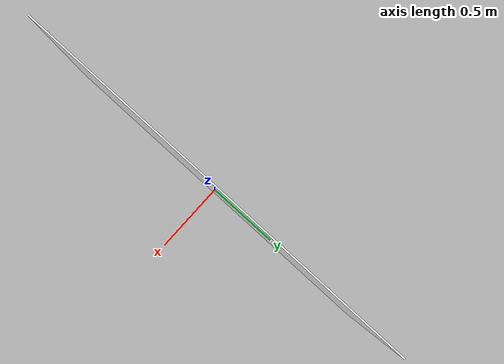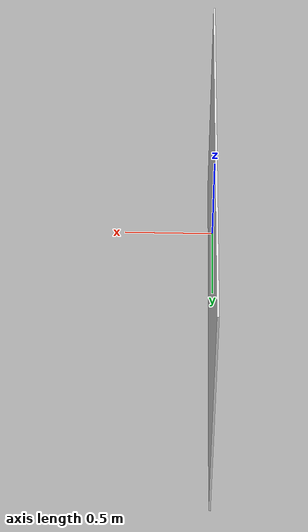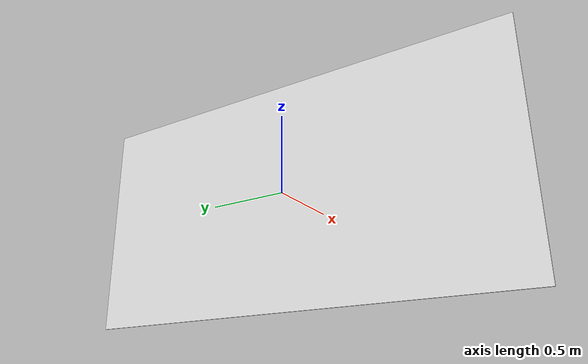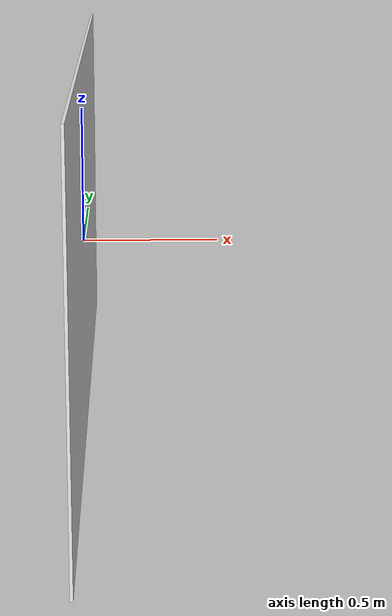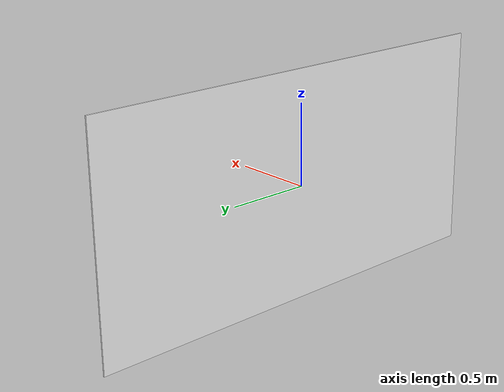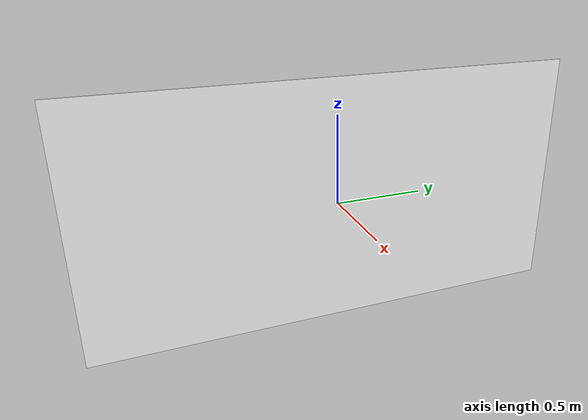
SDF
<?xml version="1.0" ?>
<sdf version="1.6">
  <model name="white_wall_img">
    <link name="link">
      <collision name="collision">
        <geometry>
          <box>
            <size>0.01 2.8 1.4</size>
          </box>
        </geometry>
      </collision>
      <visual name="visual">
        <geometry>
          <box>
            <size>0.01 2.8 1.4</size>
          </box>
        </geometry>
        <material>
          <script>
            <uri>model://white_wall_img/materials/scripts</uri>
            <uri>model://white_wall_img/materials/textures</uri>
            <name>vrc/white_wall_img</name>
          </script>
        </material>
      </visual>
    </link>

  </model>
</sdf>
